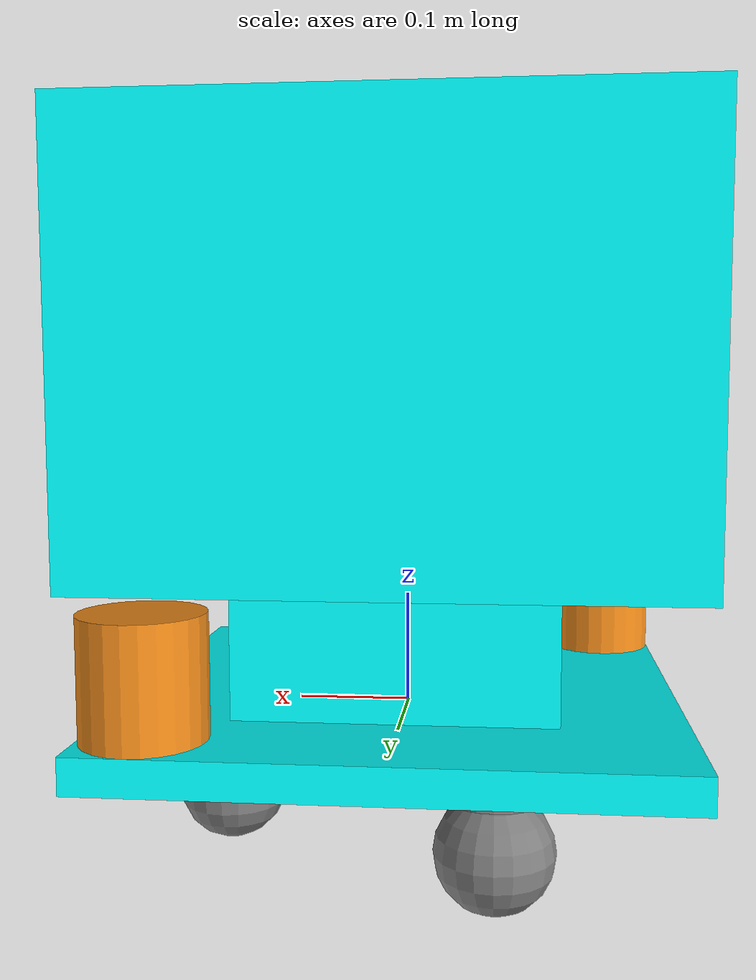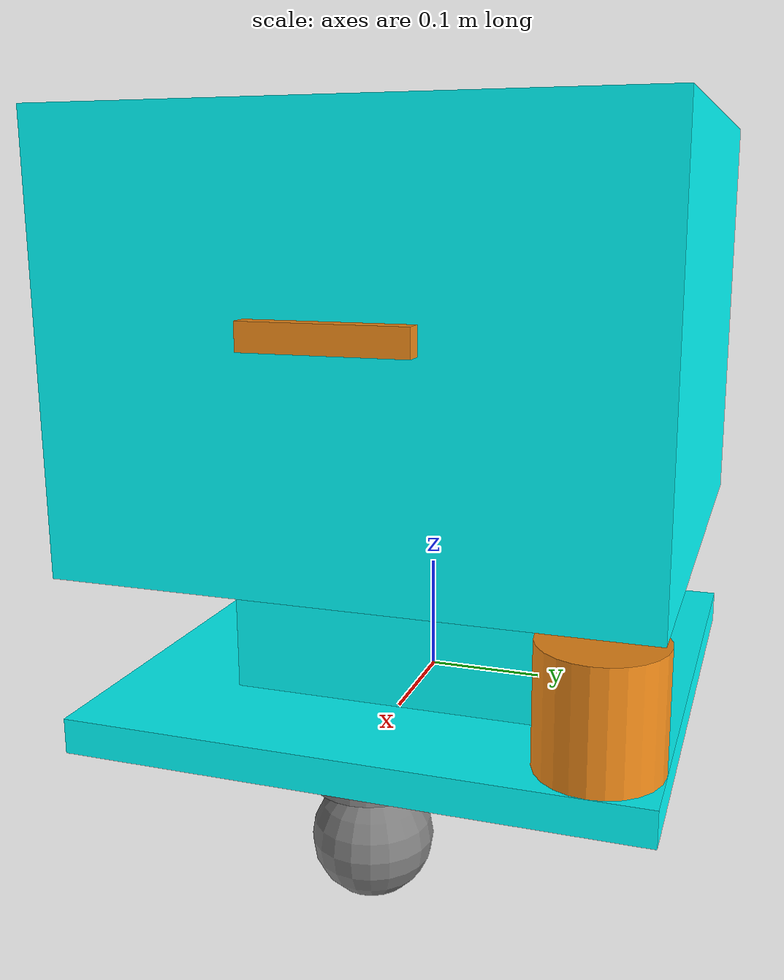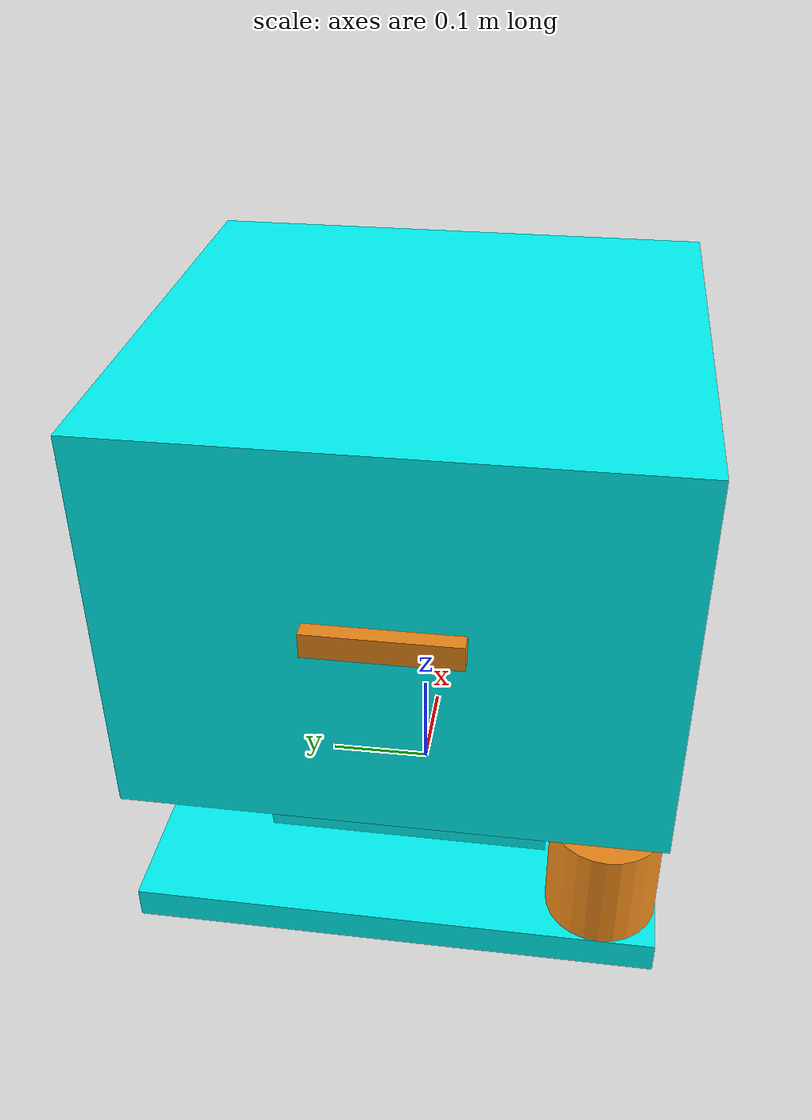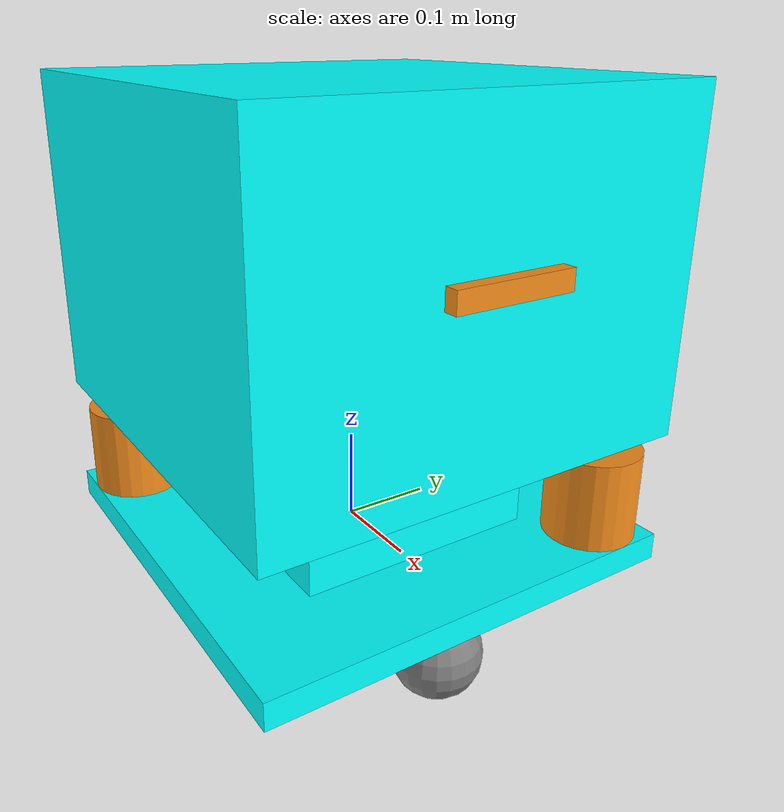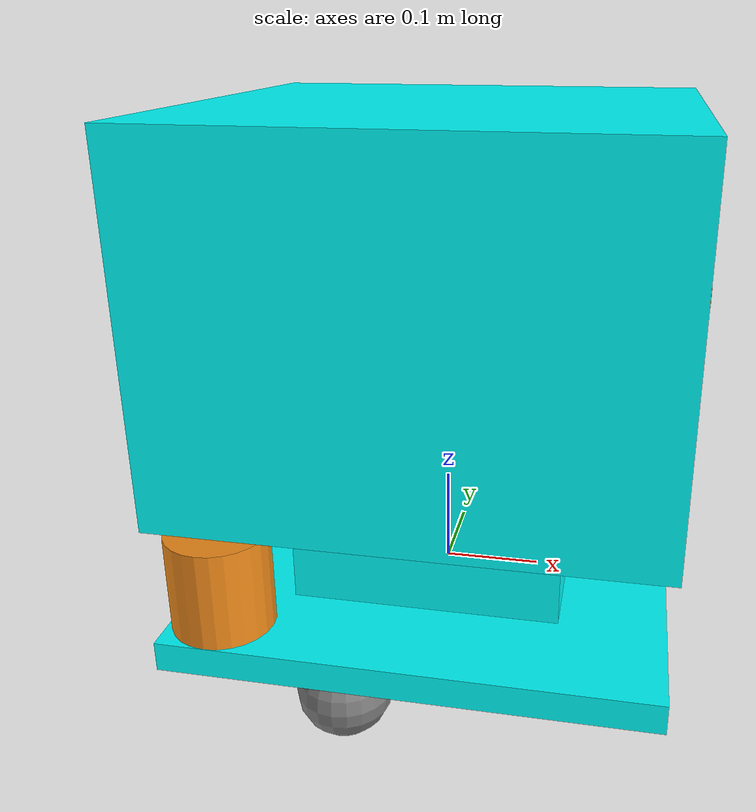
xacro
<?xml version="1.0"?>
<robot name="bot" xmlns:xacro="http://ros.org/wiki/xacro">

	<!-- Define robot constants -->
	<!-- Id changed, check also 'simu_bot_driver.cpp' -->
	<xacro:property name="square1_length" value="0.48"/>
	<xacro:property name="square1_height" value="0.03"/>
	<xacro:property name="square2_length" value="0.27"/>
	<xacro:property name="square2_height" value="0.12"/>
	<xacro:property name="square3_height" value="0.36"/>

	<xacro:property name="wheels_radius" value="0.05"/>
	<xacro:property name="triangle_lenght" value="0.32"/> <!-- Side's Triangle length-->
	<xacro:property name="wheels_distance" value="${sqrt(((3*(triangle_lenght**4))/16)+((triangle_lenght**2)/4))}"/> <!-- Radius between origin and wheels-->
	<xacro:property name="wheels_zoffset" value="0.02"/>

	<!-- Define some commonly used intertial properties  -->
	<xacro:macro name="box_inertia" params="m w h d">
		<inertial>
		<origin xyz="0 0 0" rpy="${pi/2} 0 ${pi/2}"/>
		<mass value="${m}"/>
		<inertia ixx="${(m/12) * (h*h + d*d)}" ixy="0.0" ixz="0.0" iyy="${(m/12) * (w*w + d*d)}" iyz="0.0" izz="${(m/12) * (w*w + h*h)}"/>
		</inertial>
	</xacro:macro>

	<xacro:macro name="cylinder_inertia" params="m r h">
		<inertial>
		<origin xyz="0 0 0" rpy="${pi/2} 0 0" />
		<mass value="${m}"/>
		<inertia ixx="${(m/12) * (3*r*r + h*h)}" ixy = "0" ixz = "0" iyy="${(m/12) * (3*r*r + h*h)}" iyz = "0" izz="${(m/2) * (r*r)}"/>
		</inertial>
	</xacro:macro>

	<xacro:macro name="sphere_inertia" params="m r">
		<inertial>
		<mass value="${m}"/>
		<inertia ixx="${(2/5) * m * (r*r)}" ixy="0.0" ixz="0.0" iyy="${(2/5) * m * (r*r)}" iyz="0.0" izz="${(2/5) * m * (r*r)}"/>
		</inertial>
	</xacro:macro>

	<!-- Robot Base -->
	<!-- Dummy link may need to be added because KDL does not support root link with inertia. But simulation not working with it-->

	<link name="base_link">
		<visual>
		<geometry>
			<box size="${square1_length} ${square1_length} ${square1_height}"/>
		</geometry>
		<material name="Cyan">
			<color rgba="0 1.0 1.0 1.0"/>
		</material>
		</visual>
		<collision>
		<geometry>
			<box size="${square1_length} ${square1_length} ${square1_height}"/>
		</geometry>
		</collision>
		<xacro:box_inertia m="15" w="${square1_length}" d="${square1_length}" h="${square1_height}"/>
	</link>

	<!-- Others Robot structures -->
	<link name="base2_link">
		<visual>
		<geometry>
			<box size="${square2_length} ${square2_length} ${square2_height}"/>
		</geometry>
		<material name="Cyan">
			<color rgba="0 1.0 1.0 1.0"/>
		</material>
		</visual>
		<collision>
		<geometry>
			<box size="${square2_length} ${square2_length} ${square2_height*0.8}"/>
		</geometry>
		</collision>
		<xacro:box_inertia m="0.5" w="${square2_length}" d="${square2_length}" h="${square2_height}"/>
	</link>
	<joint name="base2_joint" type="fixed">
		<parent link="base_link"/>
		<child link="base2_link"/>
		<origin xyz="0.0 0.0 ${(square1_height/2)+(square2_height/2)}" rpy="0 0 0"/>
	</joint>

	<link name="base3_link">
		<visual>
		<geometry>
			<box size="${square1_length} ${square1_length} ${square3_height}"/>
		</geometry>
		<material name="Cyan">
			<color rgba="0 1.0 1.0 1.0"/>
		</material>
		</visual>
		<collision>
		<geometry>
			<box size="${square1_length} ${square1_length} ${square3_height}"/>
		</geometry>
		</collision>
		<xacro:box_inertia m="0.5" w="${square1_length}" d="${square1_length}" h="${square3_height}"/>
	</link>
	<joint name="base3_joint" type="fixed">
		<parent link="base_link"/>
		<child link="base3_link"/>
		<origin xyz="0.0 0.0 ${(square1_height/2)+square2_height+(square3_height/2)}" rpy="0 0 0"/>
	</joint>

	<!-- Robot Footprint-->
	<link name="base_footprint">
		<xacro:box_inertia m="0" w="0" d="0" h="0"/>
	</link>

	<joint name="base_joint" type="fixed">
		<parent link="base_link"/>
		<child link="base_footprint"/>
		<origin xyz="0.0 0.0 ${-(wheels_radius*2+wheels_zoffset+square1_height/2)}" rpy="0 0 0"/>
	</joint>

	  <!-- 3 Wheels and there support to simulate sphere joint -->
	<xacro:macro name="wheel" params="prefix angle type">

		<!--wheel support-->
		<link name="${prefix}_sup_link">
		<visual>
			<geometry>
				<cylinder radius="${wheels_radius}" length="${wheels_zoffset}"/>
			</geometry>
			<material name="Gray">
			<color rgba="0.5 0.5 0.5 1.0"/>
			</material>
		</visual>
		<collision>
			<geometry>
			<cylinder radius="${wheels_radius}" length="${wheels_zoffset/2}"/>
			</geometry>
		</collision>
		<xacro:cylinder_inertia m="2" r="${wheels_radius}" h="${wheels_zoffset}"/>
		</link>
		<joint name="${prefix}_sup_joint" type="continuous">
			<parent link="base_link"/>
			<child link="${prefix}_sup_link"/>
			<origin xyz="${wheels_distance*cos(angle)} ${wheels_distance*sin(angle)} ${-((wheels_zoffset/2)+(square1_height/2))}" rpy="0 0 0"/>
			<axis xyz="0 0 1"/>

		</joint>

		<!--wheel-->
		<link name="${prefix}_link">
		<visual>
			<geometry>
				<sphere radius="${wheels_radius}"/>
			</geometry>
			<material name="Gray">
			<color rgba="0.5 0.5 0.5 1.0"/>
			</material>
		</visual>
		<xacro:if value="${type == 'sphere'}">
			<collision>
			<origin xyz="0 0 0" rpy="0 0 0"/>
			<geometry>
				<sphere radius="${wheels_radius}"/>
			</geometry>
			</collision>
			<xacro:sphere_inertia m="0.5" r="${wheels_radius}"/>
		</xacro:if>
		<xacro:if value="${type == 'cylinder'}">
			<collision>
			<origin xyz="0 0 0" rpy="${pi/2} 0 0"/>
			<geometry>
				<cylinder radius="${wheels_radius}" length="${wheels_radius*2}"/>
			</geometry>
			</collision>
			<xacro:cylinder_inertia m="0.5" r="${wheels_radius}" h="${wheels_radius*2}"/>
		</xacro:if>
		</link>
		<joint name="${prefix}_joint" type="continuous">
			<parent link="${prefix}_sup_link"/>
			<child link="${prefix}_link"/>
			<origin xyz="0.0 0.0 ${-wheels_radius-wheels_zoffset/2}" rpy="0 0 0"/>
			<axis xyz="0 1 0"/>
		</joint>

	</xacro:macro>

	<xacro:wheel prefix="wheel_f" angle="0.0" type="sphere" />
	<xacro:wheel prefix="wheel_bl" angle="${2*pi/3}" type="sphere" />
	<xacro:wheel prefix="wheel_br" angle="${-2*pi/3}" type="sphere" />

	<!--Gazebo plugin to read all transmission tags-->

	<xacro:include filename="lidars_description.urdf.xacro"/>
	<xacro:include filename="camera_imu_description.urdf.xacro"/>
	<xacro:include filename="gazebo_template.urdf.xacro"/>

	<gazebo reference="base2_link">
		<material>Gazebo/Green</material>
	</gazebo>

</robot>

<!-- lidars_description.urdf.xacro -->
<robot name="bot" xmlns:xacro="http://ros.org/wiki/xacro">

	<!-- THIS FILE NEED TO BE INCLUDED IN 'bot_description.urdf.xacro' -->

	<!--2 LIDAR-->
	<xacro:macro name="lidar" params="prefix x y">
		<link name="${prefix}_link">
			<inertial>
			<origin xyz="0 0 0" rpy="0 0 0"/>
			<mass value="0.125"/>
			<inertia ixx="0.001"  ixy="0"  ixz="0" iyy="0.001" iyz="0" izz="0.001" />
			</inertial>

			<collision>
			<origin xyz="0 0 0" rpy="0 0 0"/>
			<geometry>
				<cylinder radius="0.0508" length="${0.1}"/>
			</geometry>
			</collision>

			<visual>
			<origin xyz="0 0 0" rpy="0 0 0"/>
			<geometry>
				<cylinder radius="0.0508" length="${0.1}"/>
			</geometry>
			</visual>
		</link>

		<joint name="${prefix}_joint" type="fixed">
			<parent link="base_link"/>
			<child link="${prefix}_link"/>
			<origin xyz="${x} ${y} ${square1_height/2+0.1/2}" rpy="0 0 0"/>
		</joint>

		<gazebo reference="${prefix}_link">
    		<!-- Instead, we need to add gazebo tags for our links that refer to Gazebo materials -->
        	<material>Gazebo/Orange</material>
			<sensor name="${prefix}" type="ray">
			<always_on>true</always_on>
			<visualize>true</visualize>
			<update_rate>5</update_rate>
			<ray>
				<scan>
				<horizontal>
					<samples>360</samples>
					<resolution>1.000000</resolution>
					<min_angle>0.000000</min_angle>
					<max_angle>6.280000</max_angle>
				</horizontal>
				</scan>
				<range>
				<min>0.120000</min>
				<max>3.5</max>
				<resolution>0.015000</resolution>
				</range>
				<noise>
				<type>gaussian</type>
				<mean>0.0</mean>
				<stddev>0.01</stddev>
				</noise>
			</ray>
			<plugin name="scan" filename="libgazebo_ros_ray_sensor.so">
				<ros>
				<remapping>~/out:=${prefix}_scan</remapping>
				</ros>
				<output_type>sensor_msgs/LaserScan</output_type>
				<frame_name>${prefix}_link</frame_name>
			</plugin>
			</sensor>
		</gazebo>
	</xacro:macro>

	<xacro:lidar prefix="lidar1" x="${(square1_length/2)-0.0508}" y="${(square1_length/2)-0.0508}" />
	<xacro:lidar prefix="lidar2" x="${-((square1_length/2)-0.0508)}" y="${-((square1_length/2)-0.0508)}" />

</robot>

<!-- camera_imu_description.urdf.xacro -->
<robot name="bot" xmlns:xacro="http://ros.org/wiki/xacro">

	<!-- THIS FILE NEED TO BE INCLUDED IN 'bot_description.urdf.xacro' -->

	<!--2 CAMERA-->
	<!--camera object front-->
	<link name="camf_link">
		<visual>
		<origin xyz="0 0 0" rpy="0 0 0"/>
		<geometry>
			<box size="0.015 0.130 0.022"/>
		</geometry>
		</visual>

		<collision>
		<origin xyz="0 0 0" rpy="0 0 0"/>
		<geometry>
			<box size="0.015 0.130 0.022"/>
		</geometry>
		</collision>

		<inertial>
		<origin xyz="0 0 0" rpy="0 0 0"/>
		<mass value="0.035"/>
		<inertia ixx="0.001"  ixy="0"  ixz="0" iyy="0.001" iyz="0" izz="0.001" />
		</inertial>
	</link>

	<joint name="camf_joint" type="fixed">
		<parent link="base3_link"/>
		<child link="camf_link"/>
		<origin xyz="${(square1_length/2)+0.015/2} 0.0 ${(square2_height/2)-0.03-0.022/2}" rpy="0.0 0.0 0.0"/>
	</joint>

	<!--depth camera front-->
	<link name="camf_depth_frame"/>

	<joint name="camf_depth_joint" type="fixed">
		<origin xyz="0 0 0" rpy="${-pi/2} 0 ${-pi/2}"/>
		<parent link="camf_link"/>
		<child link="camf_depth_frame"/>
	</joint>

	<gazebo reference="camf_link">
    	<!-- Instead, we need to add gazebo tags for our links that refer to Gazebo materials -->
        <material>Gazebo/Orange</material>
		<sensor type="depth" name="camf">
		<update_rate>30.0</update_rate>
		<camera name="camf_cam">
			<horizontal_fov>1.6</horizontal_fov>
			<image>
			<width>800</width>
			<height>800</height>
			<format>R8G8B8</format>
			</image>
			<clip>
			<near>0.02</near>
			<far>3</far>
			</clip>
			<noise>
			<type>gaussian</type>
			<mean>0.0</mean>
			<stddev>0.007</stddev>
			</noise>
		</camera>
		<plugin name="depth_camera_controller" filename="libgazebo_ros_camera.so">
			<baseline>0.2</baseline>
			<alwaysOn>true</alwaysOn>
			<updateRate>0.0</updateRate>
			<frame_name>camf_depth_frame</frame_name>
			<pointCloudCutoff>0.5</pointCloudCutoff>
			<pointCloudCutoffMax>3.0</pointCloudCutoffMax>
			<distortionK1>0</distortionK1>
			<distortionK2>0</distortionK2>
			<distortionK3>0</distortionK3>
			<distortionT1>0</distortionT1>
			<distortionT2>0</distortionT2>
			<CxPrime>0</CxPrime>
			<Cx>0</Cx>
			<Cy>0</Cy>
			<focalLength>0</focalLength>
			<hackBaseline>0</hackBaseline>
		</plugin>
		</sensor>
	</gazebo>

	<!--camera object back-->
	<link name="camb_link">
		<visual>
		<origin xyz="0 0 0" rpy="0 0 0"/>
		<geometry>
			<box size="0.015 0.130 0.022"/>
		</geometry>
		</visual>

		<collision>
		<origin xyz="0 0 0" rpy="0 0 0"/>
		<geometry>
			<box size="0.015 0.130 0.022"/>
		</geometry>
		</collision>

		<inertial>
		<origin xyz="0 0 0" rpy="0 0 0"/>
		<mass value="0.035"/>
		<inertia ixx="0.001"  ixy="0"  ixz="0" iyy="0.001" iyz="0" izz="0.001" />
		</inertial>
	</link>

	<joint name="camb_joint" type="fixed">
		<parent link="base3_link"/>
		<child link="camb_link"/>
		<origin xyz="${-((square1_length/2)+0.015/2)} 0.0 ${(square2_height/2)-0.03-0.022/2}" rpy="0.0 0.0 ${pi}"/>
	</joint>

	<!--depth camera back-->
	<link name="camb_depth_frame"/>

	<joint name="camb_depth_joint" type="fixed">
		<origin xyz="0 0 0" rpy="${-pi/2} 0 ${-pi/2}"/>
		<parent link="camb_link"/>
		<child link="camb_depth_frame"/>
	</joint>

	<gazebo reference="camb_link">
    	<!-- Instead, we need to add gazebo tags for our links that refer to Gazebo materials -->
        <material>Gazebo/Orange</material>
		<sensor type="depth" name="camb">
		<update_rate>30.0</update_rate>
		<camera name="camb_cam">
			<horizontal_fov>1.6</horizontal_fov>
			<image>
			<width>800</width>
			<height>800</height>
			<format>R8G8B8</format>
			</image>
			<clip>
			<near>0.02</near>
			<far>3</far>
			</clip>
			<noise>
			<type>gaussian</type>
			<mean>0.0</mean>
			<stddev>0.007</stddev>
			</noise>
		</camera>
		<plugin name="depth_camera_controller" filename="libgazebo_ros_camera.so">
			<baseline>0.2</baseline>
			<alwaysOn>true</alwaysOn>
			<updateRate>0.0</updateRate>
			<frame_name>camb_depth_frame</frame_name>
			<pointCloudCutoff>0.5</pointCloudCutoff>
			<pointCloudCutoffMax>3.0</pointCloudCutoffMax>
			<distortionK1>0</distortionK1>
			<distortionK2>0</distortionK2>
			<distortionK3>0</distortionK3>
			<distortionT1>0</distortionT1>
			<distortionT2>0</distortionT2>
			<CxPrime>0</CxPrime>
			<Cx>0</Cx>
			<Cy>0</Cy>
			<focalLength>0</focalLength>
			<hackBaseline>0</hackBaseline>
		</plugin>
		</sensor>
	</gazebo>

	<!--2 IMU in each camera-->
	<link name="imu_link">
		<visual>
		<geometry>
			<box size="0.01 0.01 0.01"/>
		</geometry>
		</visual>

		<collision>
		<geometry>
			<box size="0.01 0.01 0.01"/>
		</geometry>
		</collision>

		<xacro:box_inertia m="0.01" w="0.01" d="0.01" h="0.01"/>
	</link>

	<joint name="imu_joint" type="fixed">
		<parent link="base_link"/>
		<child link="imu_link"/>
		<origin xyz="0 0 0.0"/>
	</joint>

	<gazebo reference="imu_link">

		<sensor name="imu_sensor" type="imu">
		<plugin filename="libgazebo_ros_imu_sensor.so" name="imu_plugin">
			<ros>
			<namespace>/imu</namespace>
			<remapping>~/out:=data</remapping>
			</ros>
			<initial_orientation_as_reference>false</initial_orientation_as_reference>
		</plugin>
		<always_on>true</always_on>
		<update_rate>100</update_rate>
		<visualize>true</visualize>
		<imu>
			<angular_velocity>
			<x>
				<noise type="gaussian">
				<mean>0.0</mean>
				<stddev>2e-4</stddev>
				<bias_mean>0.0000075</bias_mean>
				<bias_stddev>0.0000008</bias_stddev>
				</noise>
			</x>
			<y>
				<noise type="gaussian">
				<mean>0.0</mean>
				<stddev>2e-4</stddev>
				<bias_mean>0.0000075</bias_mean>
				<bias_stddev>0.0000008</bias_stddev>
				</noise>
			</y>
			<z>
				<noise type="gaussian">
				<mean>0.0</mean>
				<stddev>2e-4</stddev>
				<bias_mean>0.0000075</bias_mean>
				<bias_stddev>0.0000008</bias_stddev>
				</noise>
			</z>
			</angular_velocity>
			<linear_acceleration>
			<x>
				<noise type="gaussian">
				<mean>0.0</mean>
				<stddev>1.7e-2</stddev>
				<bias_mean>0.1</bias_mean>
				<bias_stddev>0.001</bias_stddev>
				</noise>
			</x>
			<y>
				<noise type="gaussian">
				<mean>0.0</mean>
				<stddev>1.7e-2</stddev>
				<bias_mean>0.1</bias_mean>
				<bias_stddev>0.001</bias_stddev>
				</noise>
			</y>
			<z>
				<noise type="gaussian">
				<mean>0.0</mean>
				<stddev>1.7e-2</stddev>
				<bias_mean>0.1</bias_mean>
				<bias_stddev>0.001</bias_stddev>
				</noise>
			</z>
			</linear_acceleration>
		</imu>
		</sensor>
	</gazebo>

</robot>
